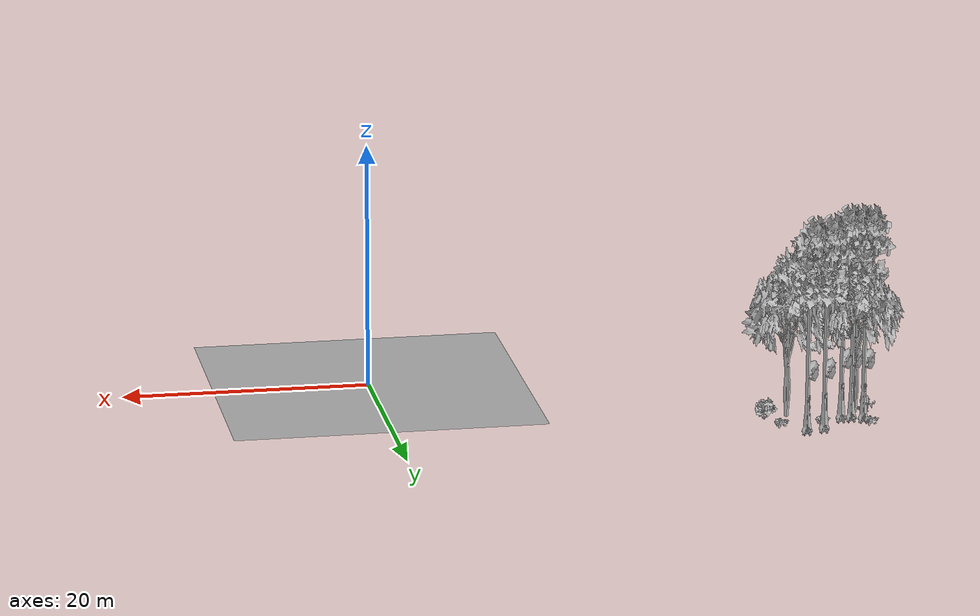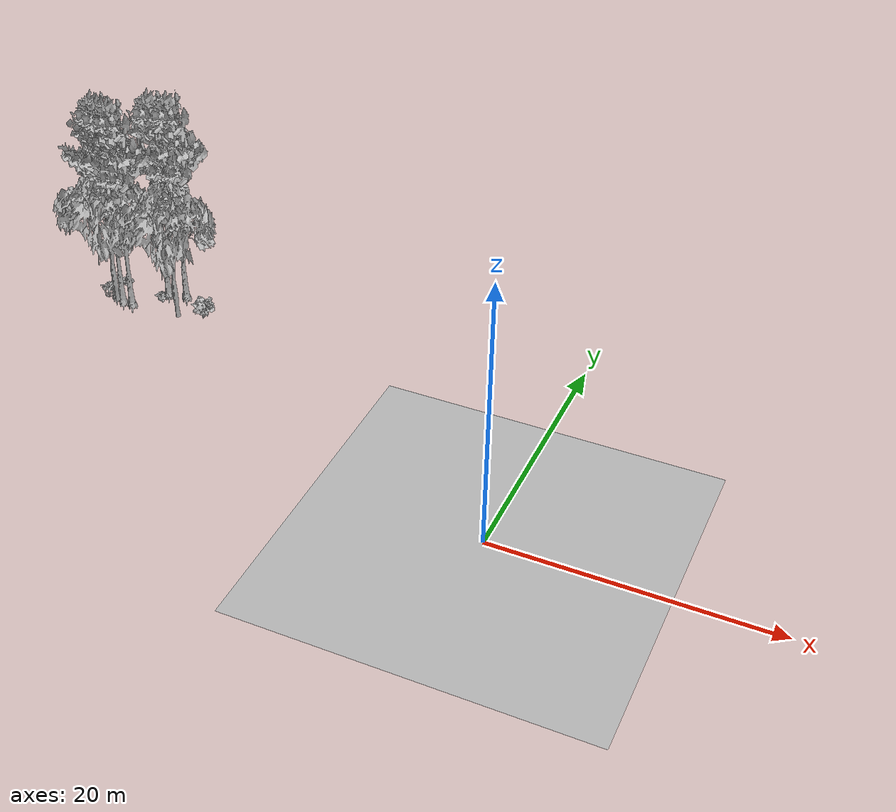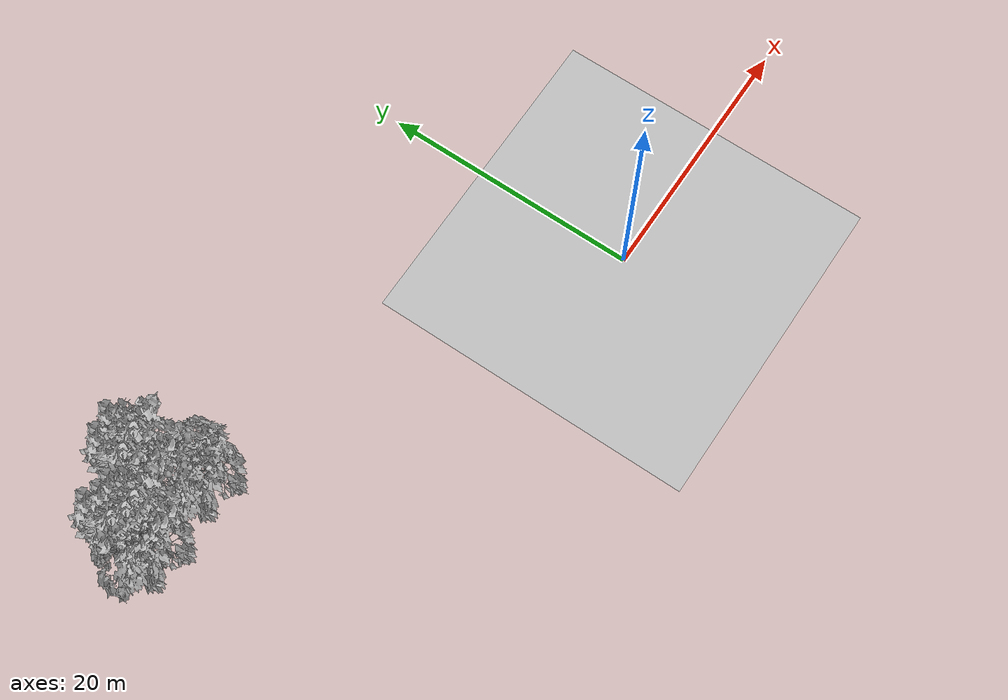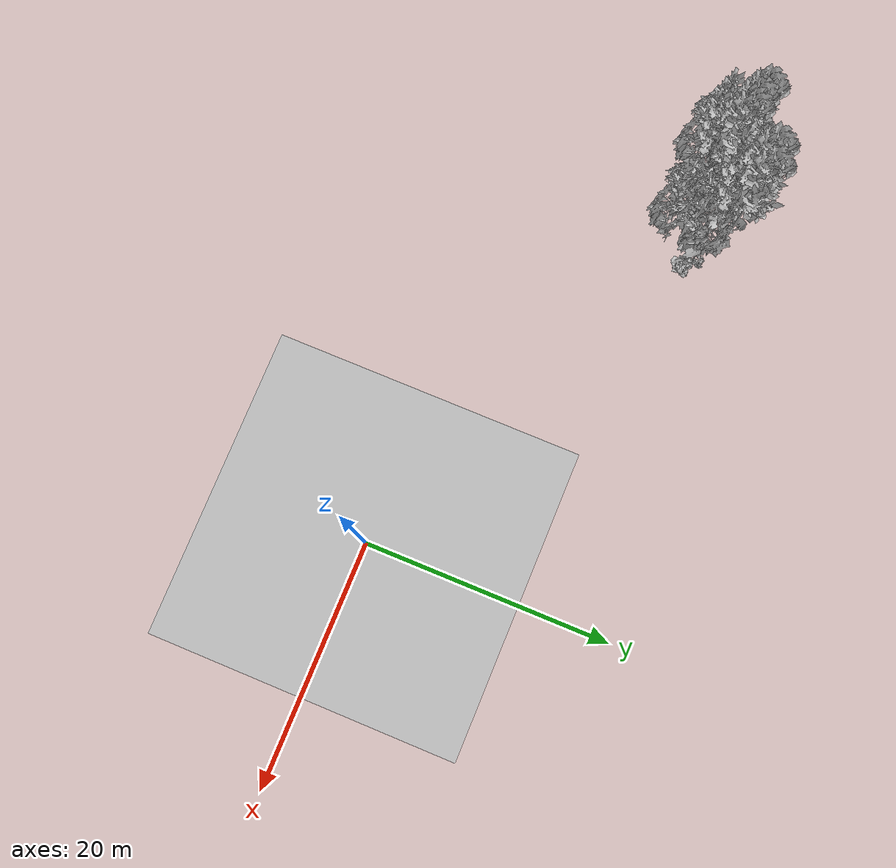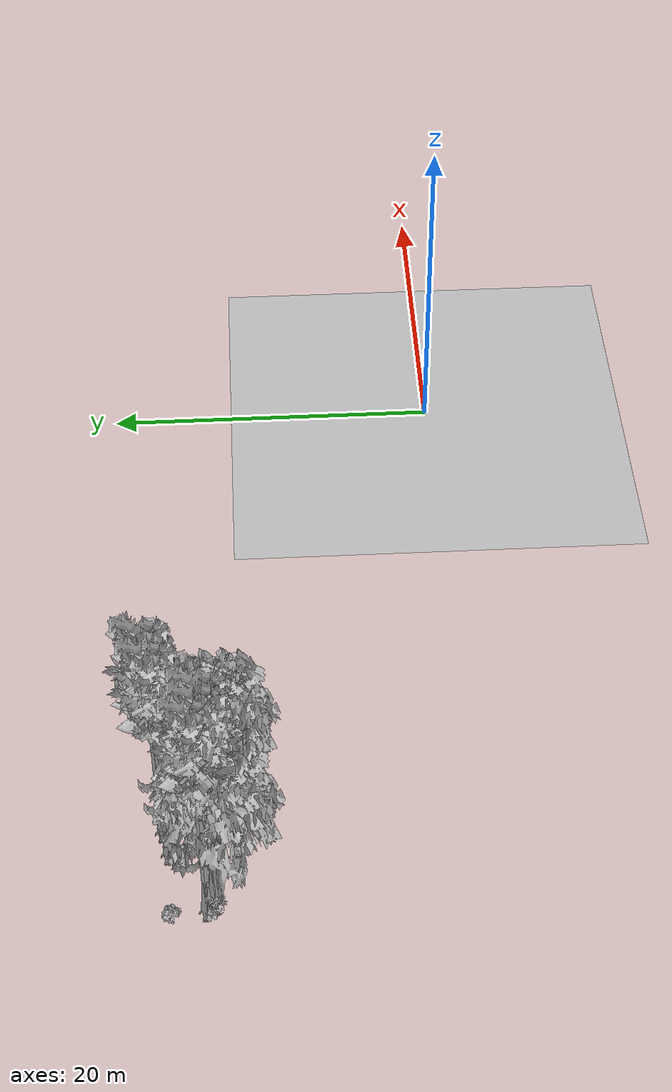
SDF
<sdf version="1.7">
 <world name="default">
  <model name="ground_plane">
   <static>1</static>
   <link name="link">
    <collision name="collision">
     <pose>-50 0 0 0 -0 0</pose>
     <geometry><plane><normal>0 0 1</normal><size>80 80</size></plane></geometry>
     <surface><contact><ode><min_depth>0.01</min_depth><max_vel>0</max_vel></ode></contact></surface>
    </collision>
    <visual name="grass">
     <cast_shadows>0</cast_shadows>
     <geometry>
      <mesh>
       <scale>0.46714285714285714 0.46714285714285714 0.1</scale>
       <uri>file://grass_plane/meshes/grass_plane.dae</uri>
      </mesh>
     </geometry>
    </visual>
   </link>
  </model>
  <model name="Tree 15">
   <static>1</static>
   <pose>-37.20618540738425 13.720234120923521 0 1.57079 -0 0</pose>
   <link name="link">
    <collision name="collision">
     <geometry><mesh><scale>3.5 5 3.5</scale><uri>model://tree_2/meshes/tree_2.obj</uri></mesh></geometry>
    </collision>
    <visual name="visual">
     <geometry><mesh><scale>3.5 5 3.5</scale><uri>model://tree_2/meshes/tree_2.obj</uri></mesh></geometry>
    </visual>
   </link>
  </model>
  <model name="Tree 41">
   <static>1</static>
   <pose>-34.03493716471832 16.4164636916083 0 1.57079 -0 0</pose>
   <link name="link">
    <collision name="collision">
     <geometry><mesh><scale>3.5 5 3.5</scale><uri>model://tree_9/meshes/tree_9.obj</uri></mesh></geometry>
    </collision>
    <visual name="visual">
     <geometry><mesh><scale>3.5 5 3.5</scale><uri>model://tree_9/meshes/tree_9.obj</uri></mesh></geometry>
    </visual>
   </link>
  </model>
  <model name="Tree 241">
   <static>1</static>
   <pose>-37.694886449651996 14.407542647048466 0 1.57079 -0 0</pose>
   <link name="link">
    <collision name="collision">
     <geometry><mesh><scale>3.5 5 3.5</scale><uri>model://tree_9/meshes/tree_9.obj</uri></mesh></geometry>
    </collision>
    <visual name="visual">
     <geometry><mesh><scale>3.5 5 3.5</scale><uri>model://tree_9/meshes/tree_9.obj</uri></mesh></geometry>
    </visual>
   </link>
  </model>
  <model name="Tree 260">
   <static>1</static>
   <pose>-36.80239894972845 14.006537549172187 0 1.57079 -0 0</pose>
   <link name="link">
    <collision name="collision">
     <geometry><mesh><scale>3.5 5 3.5</scale><uri>model://tree_9/meshes/tree_9.obj</uri></mesh></geometry>
    </collision>
    <visual name="visual">
     <geometry><mesh><scale>3.5 5 3.5</scale><uri>model://tree_9/meshes/tree_9.obj</uri></mesh></geometry>
    </visual>
   </link>
  </model>
  <model name="Tree 288">
   <static>1</static>
   <pose>-35.96404239201554 14.01318118869127 0 1.57079 -0 0</pose>
   <link name="link">
    <collision name="collision">
     <geometry><mesh><scale>3.5 5 3.5</scale><uri>model://tree_9/meshes/tree_9.obj</uri></mesh></geometry>
    </collision>
    <visual name="visual">
     <geometry><mesh><scale>3.5 5 3.5</scale><uri>model://tree_9/meshes/tree_9.obj</uri></mesh></geometry>
    </visual>
   </link>
  </model>
  <model name="Tree 347">
   <static>1</static>
   <pose>-32.578249764415055 16.73376043201641 0 1.57079 -0 0</pose>
   <link name="link">
    <collision name="collision">
     <geometry><mesh><scale>3.5 5 3.5</scale><uri>model://tree_9/meshes/tree_9.obj</uri></mesh></geometry>
    </collision>
    <visual name="visual">
     <geometry><mesh><scale>3.5 5 3.5</scale><uri>model://tree_9/meshes/tree_9.obj</uri></mesh></geometry>
    </visual>
   </link>
  </model>
  <model name="Tree 633">
   <static>1</static>
   <pose>-31.6268241322363 13.772469344879909 0 1.57079 -0 0</pose>
   <link name="link">
    <collision name="collision">
     <geometry><mesh><scale>3.5 5 3.5</scale><uri>model://tree_2/meshes/tree_2.obj</uri></mesh></geometry>
    </collision>
    <visual name="visual">
     <geometry><mesh><scale>3.5 5 3.5</scale><uri>model://tree_2/meshes/tree_2.obj</uri></mesh></geometry>
    </visual>
   </link>
  </model>
  <model name="Bush 264">
   <static>1</static>
   <pose>-34.104446664498774 15.520704984992115 0 1.57079 -0 0</pose>
   <link name="link">
    <collision name="collision">
     <geometry><mesh><scale>2 2 2</scale><uri>model://bush_2/meshes/bush_2.obj</uri></mesh></geometry>
     <surface><contact><collide_without_contact>false</collide_without_contact></contact></surface>
    </collision>
    <visual name="visual">
     <geometry><mesh><scale>2 2 2</scale><uri>model://bush_2/meshes/bush_2.obj</uri></mesh></geometry>
    </visual>
   </link>
  </model>
  <model name="Bush 317">
   <static>1</static>
   <pose>-37.9069768457128 16.247177366144108 0 1.57079 -0 0</pose>
   <link name="link">
    <collision name="collision">
     <geometry><mesh><scale>2 2 2</scale><uri>model://bush_2/meshes/bush_2.obj</uri></mesh></geometry>
     <surface><contact><collide_without_contact>false</collide_without_contact></contact></surface>
    </collision>
    <visual name="visual">
     <geometry><mesh><scale>2 2 2</scale><uri>model://bush_2/meshes/bush_2.obj</uri></mesh></geometry>
    </visual>
   </link>
  </model>
  <model name="Bush 334">
   <static>1</static>
   <pose>-30.73388671977209 15.621789212673924 0 1.57079 -0 0</pose>
   <link name="link">
    <collision name="collision">
     <geometry><mesh><scale>2 2 2</scale><uri>model://bush_2/meshes/bush_2.obj</uri></mesh></geometry>
     <surface><contact><collide_without_contact>false</collide_without_contact></contact></surface>
    </collision>
    <visual name="visual">
     <geometry><mesh><scale>2 2 2</scale><uri>model://bush_2/meshes/bush_2.obj</uri></mesh></geometry>
    </visual>
   </link>
  </model>
  <model name="Bush 362">
   <static>1</static>
   <pose>-29.615496105620238 14.384586031341158 0 1.57079 -0 0</pose>
   <link name="link">
    <collision name="collision">
     <geometry><mesh><scale>2 2 2</scale><uri>model://bush_1/meshes/bush_1.obj</uri></mesh></geometry>
     <surface><contact><collide_without_contact>false</collide_without_contact></contact></surface>
    </collision>
    <visual name="visual">
     <geometry><mesh><scale>2 2 2</scale><uri>model://bush_1/meshes/bush_1.obj</uri></mesh></geometry>
    </visual>
   </link>
  </model>
  <model name="Bush 627">
   <static>1</static>
   <pose>-38.02385524838273 13.84174881270448 0 1.57079 -0 0</pose>
   <link name="link">
    <collision name="collision">
     <geometry><mesh><scale>2 2 2</scale><uri>model://bush_4/meshes/bush_4.obj</uri></mesh></geometry>
     <surface><contact><collide_without_contact>false</collide_without_contact></contact></surface>
    </collision>
    <visual name="visual">
     <geometry><mesh><scale>2 2 2</scale><uri>model://bush_4/meshes/bush_4.obj</uri></mesh></geometry>
    </visual>
   </link>
  </model>
 </world>
</sdf>
